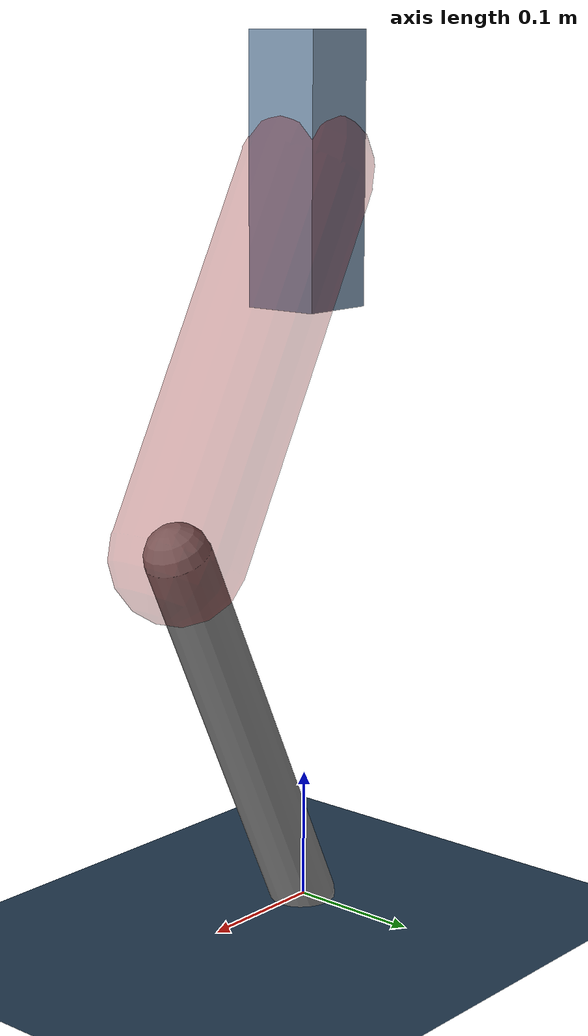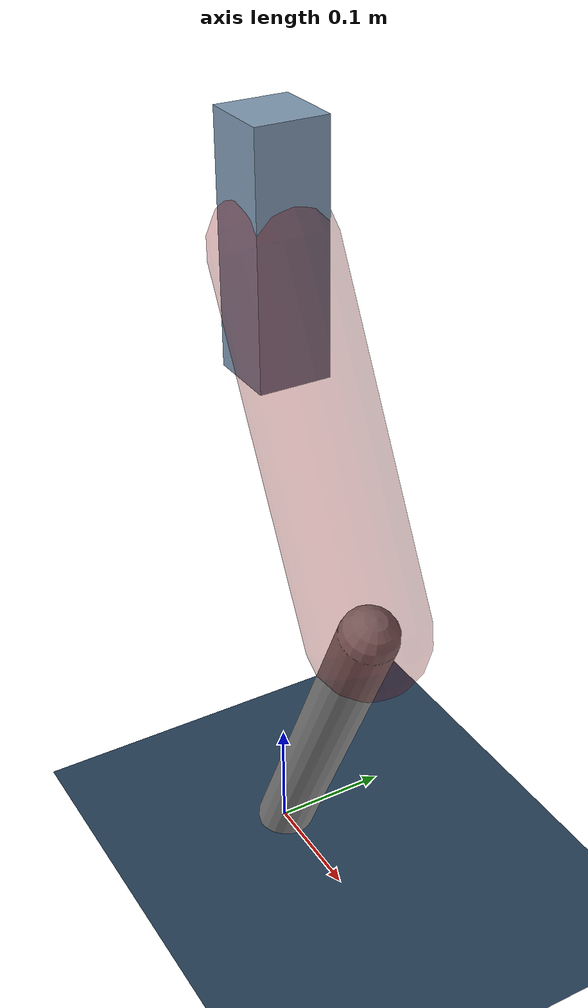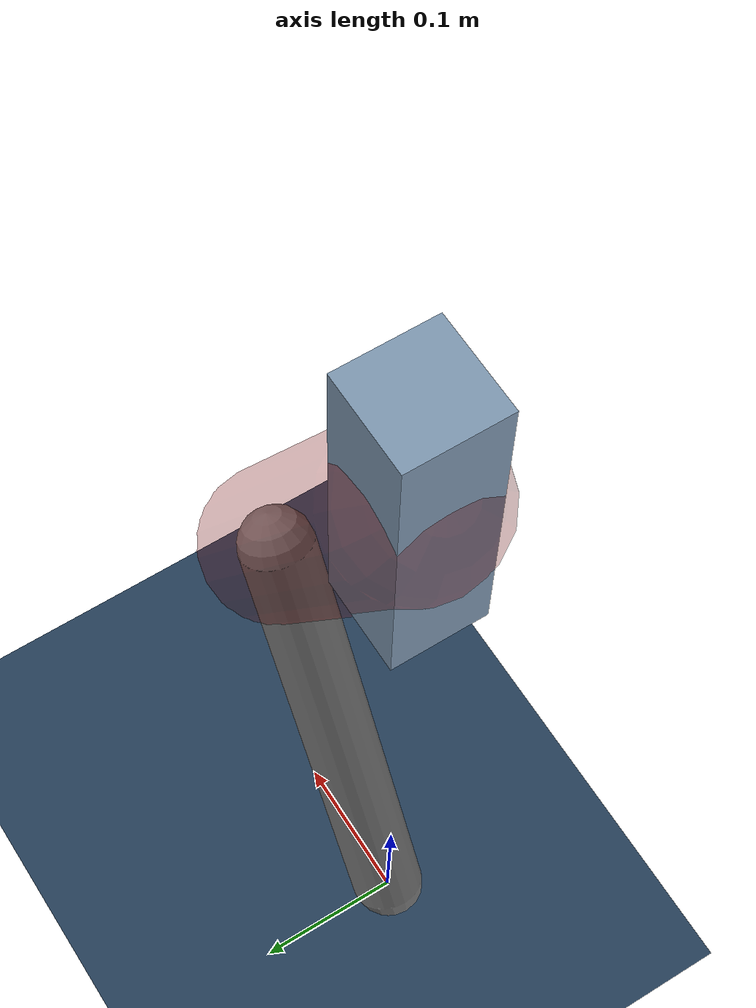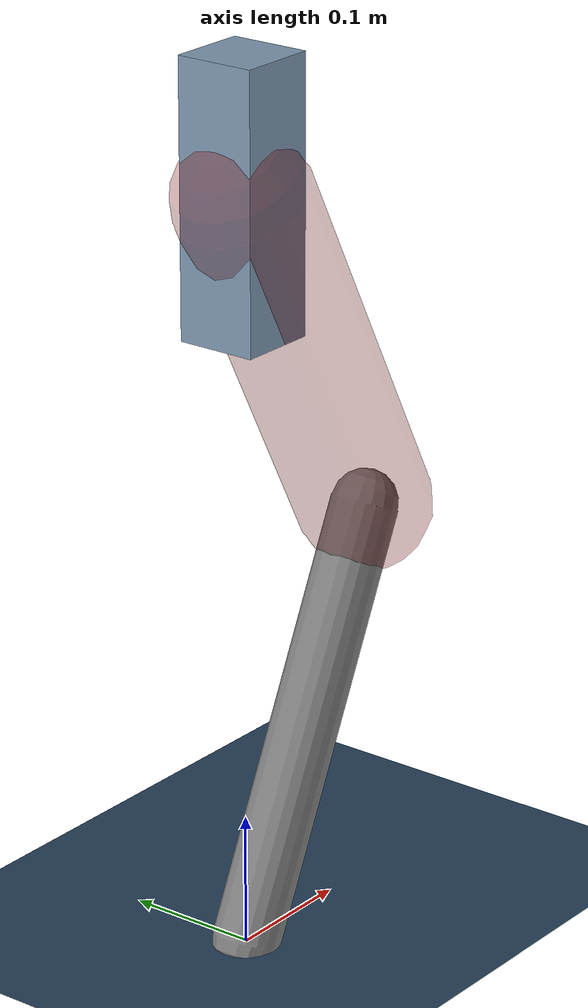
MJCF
<mujoco model="Hopper2D">
	<compiler inertiafromgeom="true" angle="radian" />
	<option timestep="0.001" integrator="implicit" cone="elliptic" solver="Newton" tolerance="1e-10" />

	<default>
		<geom contype="1" conaffinity="1" condim="3" friction="2 0.005 0.0001" solref="0.005 1" />
		<joint limited="true" damping="0.1" />
	</default>

	<asset>
		<texture name="skybox" type="skybox" builtin="gradient" rgb1=".4 .6 .8" rgb2="0 0 0" width="800" height="800" />
		<texture name="grid" type="2d" builtin="checker" rgb1=".1 .2 .3" rgb2=".2 .3 .4" width="300" height="300" mark="edge" markrgb=".2 .3 .4" />
		<material name="ground" texture="grid" texrepeat="1 1" texuniform="true" reflectance="0.1" />
		<material name="leg" rgba="0.5 0.6 0.7 1" />
	</asset>

	<worldbody>

		<geom name="floor" type="plane" size="5 5 0.25" material="ground" />

		<light directional="false" diffuse="0.8 0.8 0.8" specular="0.3 0.3 0.3" pos="0 0 2" dir="0 0 -1" />
		<light mode="targetbodycom" target="base" directional="false" diffuse="0.8 0.8 0.8" specular="0.3 0.3 0.3" pos="0 0 2" dir="0 0 -1" />

		<camera name="fixed" pos="0 -2 1" xyaxes="1 0 0 0 0 1" />
		<camera name="tracking" mode="trackcom" pos="0 -3 1" />

		<body name="root" pos="0 0 0.5624405623724501">
			<joint name="slide_x" type="slide" axis="1 0 0" range="-100 100" />
			<joint name="slide_z" type="slide" axis="0 0 1" range="0 10" />

			<body name="base" pos="0 0 0">
				<geom name="torso" type="box" size="0.03 0.03 0.1" mass="1.913" material="leg" />

				<body name="link1" pos="0 0 0" euler="0 1.084328845115253 0">
					<joint type="hinge" axis="0 -1 0" pos="0 0 0" name="hinge1" limited="true" range="-3.14 3.14" stiffness="0" damping="0.1" />
					<geom name="thigh" type="capsule" fromto="0 0 0 0.2989991929418626 0 0" size="0.05" rgba="0.5 0 0 0.3" mass="0.9859978209430291" />

					<body name="link2" pos="0.2989991929418626 0 0" euler="0 0.9249038638669983 0">
						<joint type="hinge" axis="0 -1 0" pos="0 0 0" name="hinge2" limited="true" range="-3.14 3.14" stiffness="0" damping="0.1" />
						<geom name="shank" type="capsule" fromto="0 0 0 0.3292719885086713 0 0" size="0.025" mass="0.5072175908069371" />

					</body>
				</body>
			</body>
		</body>
	</worldbody>

	<actuator>
		<motor name="torque1" joint="hinge1" ctrlrange="-16.155214310192118 16.155214310192118" ctrllimited="true" gear="1" />
		<motor name="torque2" joint="hinge2" ctrlrange="-18.091764701559345 18.091764701559345" ctrllimited="true" gear="1" />
	</actuator>
</mujoco>
